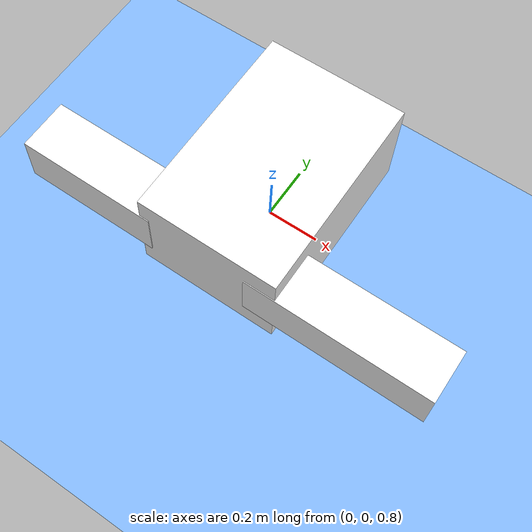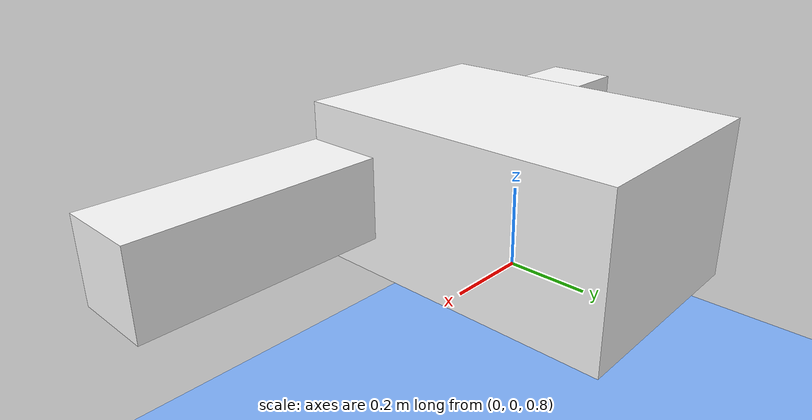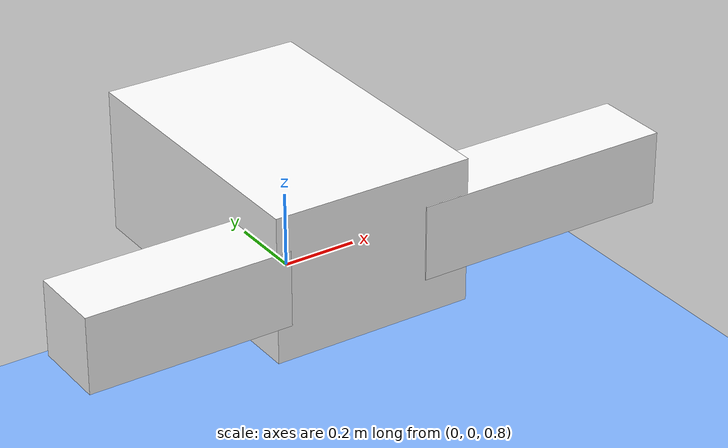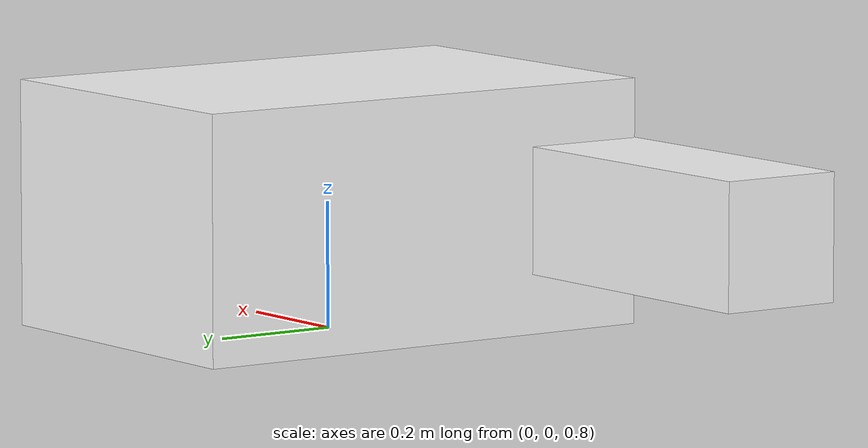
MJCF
<mujoco>
    <worldbody>
        <light diffuse=".5 .5 .5" pos="0 0 2" dir="0 -1 0" />
        <geom type="plane" size="10 10 0.1" rgba="0.5 0.7 1 1" />

        <body name="flappybird" pos="0 0 1" euler="0 0 0">
            <joint type="free" axis="0 0 0" pos="0 0 0" />
            <body name="body" pos="0 0 0" euler="0 0 0">
                <geom type="box" size="0.2696638896679474 0.3967309783493407 0.19408507053786728" rgba="1 1 1 1" mass="0.010701494189025587" />
            </body>

            <body name="wing1" pos=".5 -.3 0" euler="0 -90 0">
                <joint name="joint1" type="hinge" axis="0 1 0" pos="0 0 .25" range="-45 45" />
                <geom type="box" size="0.1 0.1 0.3521913402251084" rgba="1 1 1 1" mass="0.6386475230245537" />
            </body>

            <body name="wing2" pos="-.5 -.3 0" euler="0 90 0">
                <joint name="joint2" type="hinge" axis="0 1 0" pos="0 0 .25" range="-45 45" />
                <geom type="box" size="0.1 0.1 0.26776604336303916" rgba="1 1 1 1" mass="0.542506950033484" />
            </body>

        </body>
    </worldbody>

    <actuator>
        <motor joint="joint1" name="m1" gear="11.20998879559358" ctrllimited="true" ctrlrange="-5 5" />
        <motor joint="joint2" name="m2" gear="11.29231314809857" ctrllimited="true" ctrlrange="-5 5" />

</actuator>

</mujoco>
